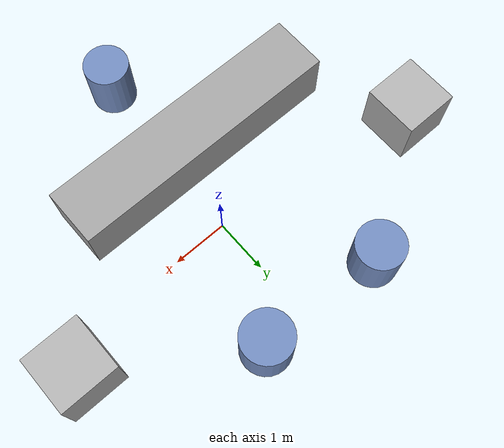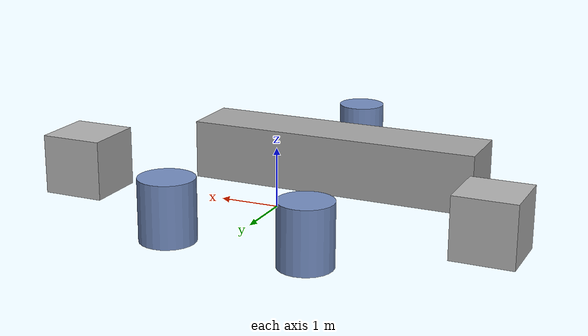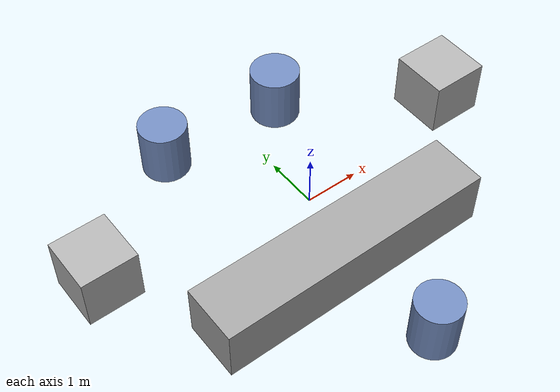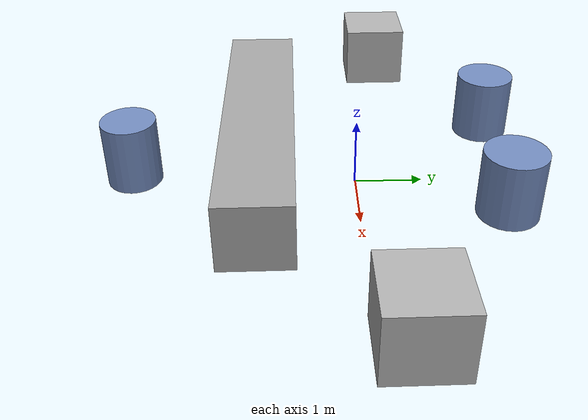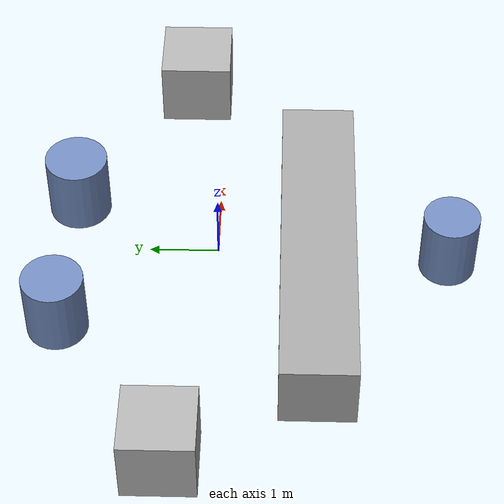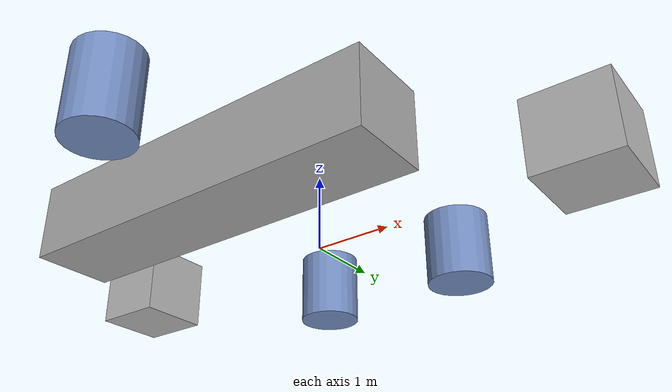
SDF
<?xml version="1.0"?>
<sdf version="1.7">
    <model name="map1_obstacles">
        <static>true</static>
        <link name="obstacles_link">
            <collision name="left_box_collision">
                <pose>-3.75 0.61 0.5 0 0 0</pose>
                <geometry><box><size>1.0 1.0 1.0</size></box></geometry>
            </collision>
            <visual name="left_box_visual">
                <pose>-3.75 0.61 0.5 0 0 0</pose>
                <geometry><box><size>1.0 1.0 1.0</size></box></geometry>
                <material><diffuse>0.7 0.7 0.7 1</diffuse></material>
            </visual>

            <collision name="right_box_collision">
                <pose>3.33 0.45 0.5 0 0 0</pose>
                <geometry><box><size>1.05 1.05 1.0</size></box></geometry>
            </collision>
            <visual name="right_box_visual">
                <pose>3.33 0.45 0.5 0 0 0</pose>
                <geometry><box><size>1.05 1.05 1.0</size></box></geometry>
                <material><diffuse>0.7 0.7 0.7 1</diffuse></material>
            </visual>

            <collision name="long_box_collision">
                <pose>-0.53 -1.42 0.5 0 0 0</pose>
                <geometry><box><size>5.0 1.05 1.0</size></box></geometry>
            </collision>
            <visual name="long_box_visual">
                <pose>-0.53 -1.42 0.5 0 0 0</pose>
                <geometry><box><size>5.0 1.05 1.0</size></box></geometry>
                <material><diffuse>0.65 0.65 0.65 1</diffuse></material>
            </visual>

            <collision name="top_left_cylinder_collision">
                <pose>-1.47 2.19 0.5 0 0 0</pose>
                <geometry><cylinder><radius>0.43</radius><length>1.0</length></cylinder></geometry>
            </collision>
            <visual name="top_left_cylinder_visual">
                <pose>-1.47 2.19 0.5 0 0 0</pose>
                <geometry><cylinder><radius>0.43</radius><length>1.0</length></cylinder></geometry>
                <material><diffuse>0.45 0.55 0.75 1</diffuse></material>
            </visual>

            <collision name="top_right_cylinder_collision">
                <pose>0.85 2.09 0.5 0 0 0</pose>
                <geometry><cylinder><radius>0.45</radius><length>1.0</length></cylinder></geometry>
            </collision>
            <visual name="top_right_cylinder_visual">
                <pose>0.85 2.09 0.5 0 0 0</pose>
                <geometry><cylinder><radius>0.45</radius><length>1.0</length></cylinder></geometry>
                <material><diffuse>0.45 0.55 0.75 1</diffuse></material>
            </visual>

            <collision name="bottom_cylinder_collision">
                <pose>-0.20 -3.29 0.5 0 0 0</pose>
                <geometry><cylinder><radius>0.40</radius><length>1.0</length></cylinder></geometry>
            </collision>
            <visual name="bottom_cylinder_visual">
                <pose>-0.20 -3.29 0.5 0 0 0</pose>
                <geometry><cylinder><radius>0.40</radius><length>1.0</length></cylinder></geometry>
                <material><diffuse>0.45 0.55 0.75 1</diffuse></material>
            </visual>
        </link>
    </model>
</sdf>
